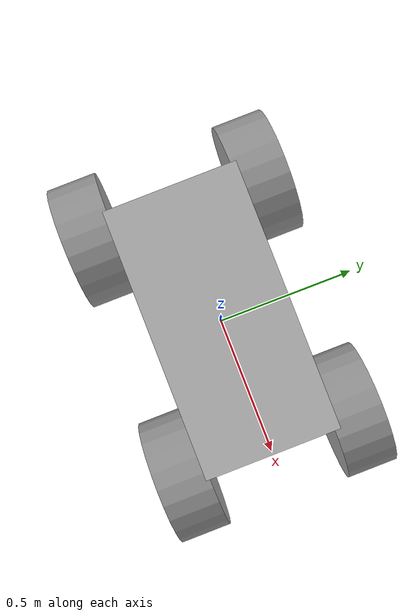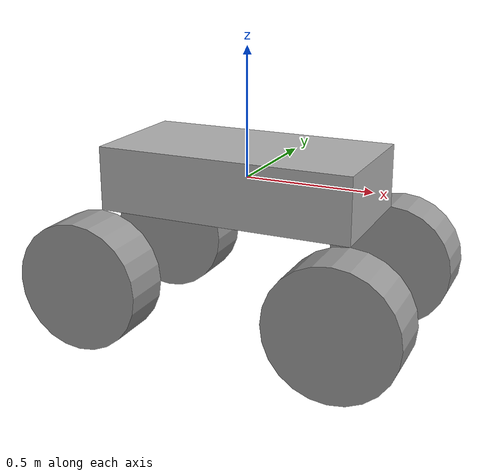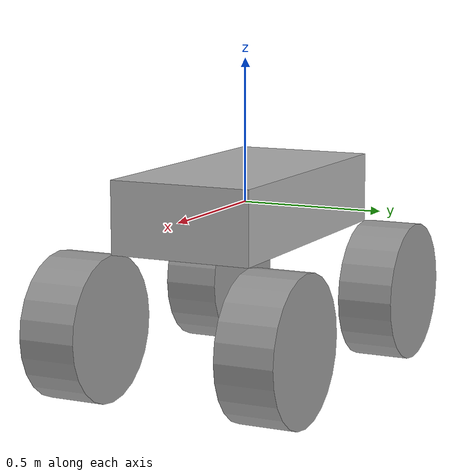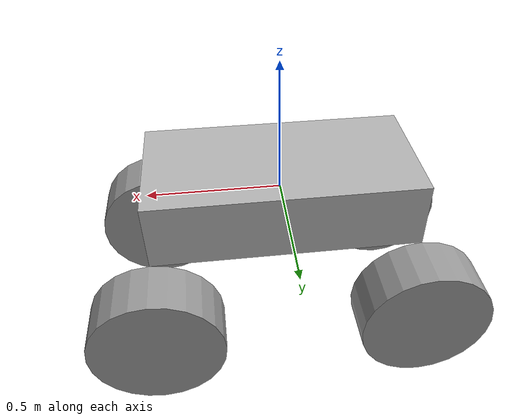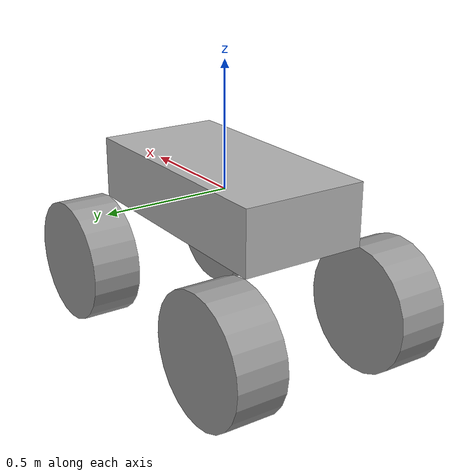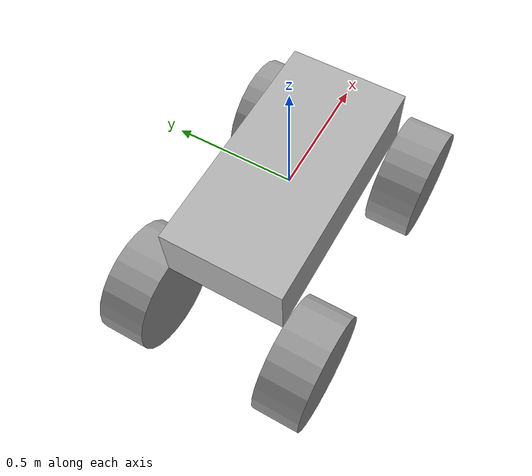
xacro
<?xml version="1.0"?>
<robot xmlns:xacro="http://wiki.ros.org/xacro" name="satellite">
  <xacro:property name="car_mass" value="100" />
  <xacro:property name="car_width" value="0.5" />
  <xacro:property name="car_height" value="0.25" />
  <xacro:property name="car_length" value="1" />
  <xacro:property name="wheel_width" value="0.2" />
  <xacro:property name="wheel_rad" value="0.25" />
  <xacro:property name="PI" value="3.1415926535897931" />

  <link name="car">
    <visual>
      <origin rpy="0 0 0" xyz="0 0 0"/>
      <geometry>
        <box size="${car_length} ${car_width} ${car_height}"/>
      </geometry>
      <material name="gray">
        <color rgba="0.7 0.7 0.7 1"/>
      </material>
    </visual>
    <inertial>
      <mass value="${car_mass}"/>
      <origin rpy="0 0 0" xyz="0 0 0"/>
      <inertia ixx="${car_mass*car_width*car_height/6}" ixy="0" ixz="0"
               iyy="${car_mass*car_length*car_height/6}" iyz="0" izz="${car_mass*car_width*car_height/6}"/>
    </inertial>
    <collision>
      <origin rpy="0 0 0" xyz="0 0 0"/>
      <geometry>
        <box size="${car_length} ${car_width} ${car_height}"/>
      </geometry>
    </collision>
  </link>

  <link name="front_wheelbase"/>

  <link name="front_wheel_left">
    <visual>
      <origin rpy="0 0 0" xyz="0 0 0"/>
      <geometry>
        <cylinder radius="${wheel_rad}" length="${wheel_width}"/>
      </geometry>
      <material name="dark_gray">
        <color rgba="0.6 0.6 0.6 1"/>
      </material>
    </visual>
    <collision>
      <origin rpy="0 0 0" xyz="0 0 0"/>
      <geometry>
        <cylinder radius="${wheel_rad}" length="${wheel_width}"/>
      </geometry>
    </collision>
  </link>

  <link name="front_wheel_right">
    <visual>
      <origin rpy="0 0 0" xyz="0 0 0"/>
      <geometry>
        <cylinder radius="${wheel_rad}" length="${wheel_width}"/>
      </geometry>
      <material name="dark_gray">
        <color rgba="0.6 0.6 0.6 1"/>
      </material>
    </visual>
    <collision>
      <origin rpy="0 0 0" xyz="0 0 0"/>
      <geometry>
        <cylinder radius="${wheel_rad}" length="${wheel_width}"/>
      </geometry>
    </collision>
  </link>

  <link name="rear_wheelbase"/>

  <link name="rear_wheel_left">
    <visual>
      <origin rpy="0 0 0" xyz="0 0 0"/>
      <geometry>
        <cylinder radius="${wheel_rad}" length="${wheel_width}"/>
      </geometry>
      <material name="dark_gray">
        <color rgba="0.6 0.6 0.6 1"/>
      </material>
    </visual>
    <collision>
      <origin rpy="0 0 0" xyz="0 0 0"/>
      <geometry>
        <cylinder radius="${wheel_rad}" length="${wheel_width}"/>
      </geometry>
    </collision>
  </link>

  <link name="rear_wheel_right">
    <visual>
      <origin rpy="0 0 0" xyz="0 0 0"/>
      <geometry>
        <cylinder radius="${wheel_rad}" length="${wheel_width}"/>
      </geometry>
      <material name="dark_gray">
        <color rgba="0.6 0.6 0.6 1"/>
      </material>
    </visual>
    <collision>
      <origin rpy="0 0 0" xyz="0 0 0"/>
      <geometry>
        <cylinder radius="${wheel_rad}" length="${wheel_width}"/>
      </geometry>
    </collision>
  </link>

  <joint name="car_to_front_wheelbase" type="revolute">
    <parent link="car"/>
    <child link="front_wheelbase"/>
    <origin xyz="${car_length/2} 0 ${-car_height/2 - wheel_rad}" rpy="0 0 0"/>
    <axis xyz="0 0 1"/>
    <dynamics damping="0" friction="0"/>
    <limit effort="7.0" lower="-3.14" upper="3.14" velocity="2.208932"/>
  </joint>

  <joint name="front_wheelbase_to_left" type="fixed">
    <parent link="front_wheelbase"/>
    <child link="front_wheel_left"/>
    <origin xyz="0 ${car_width/2 + wheel_width/2} 0" rpy="${-PI/2} 0 0"/>
  </joint>

  <joint name="front_wheelbase_to_right" type="fixed">
    <parent link="front_wheelbase"/>
    <child link="front_wheel_right"/>
    <origin xyz="0 ${-car_width/2 - wheel_width/2} 0" rpy="${PI/2} 0 0"/>
  </joint>

  <joint name="car_to_rear_wheelbase" type="fixed">
    <parent link="car"/>
    <child link="rear_wheelbase"/>
    <origin xyz="${-car_length/2} 0 ${-car_height/2 - wheel_rad}" rpy="0 0 0"/>
  </joint>

  <joint name="rear_wheelbase_to_left" type="fixed">
    <parent link="rear_wheelbase"/>
    <child link="rear_wheel_left"/>
    <origin xyz="0 ${car_width/2 + wheel_width/2} 0" rpy="${-PI/2} 0 0"/>
  </joint>

  <joint name="rear_wheelbase_to_right" type="fixed">
    <parent link="rear_wheelbase"/>
    <child link="rear_wheel_right"/>
    <origin xyz="0 ${-car_width/2 - wheel_width/2} 0" rpy="${PI/2} 0 0"/>
  </joint>
</robot>
